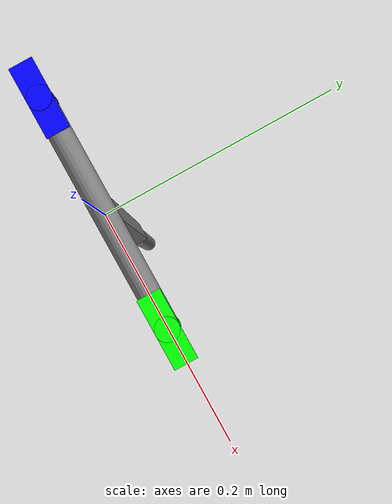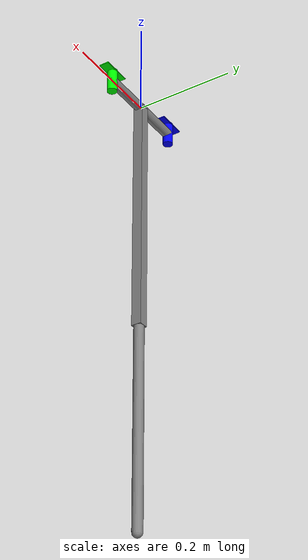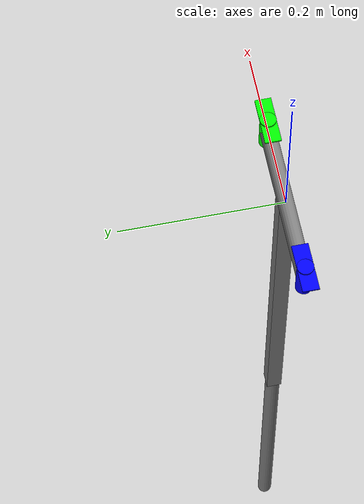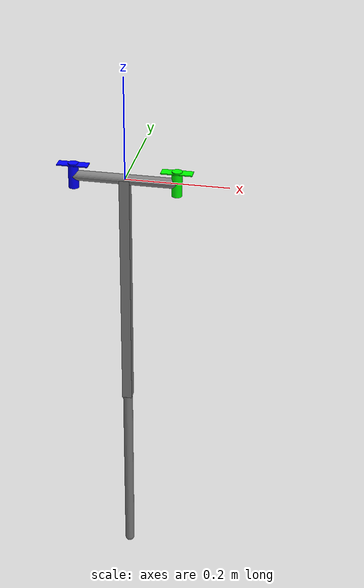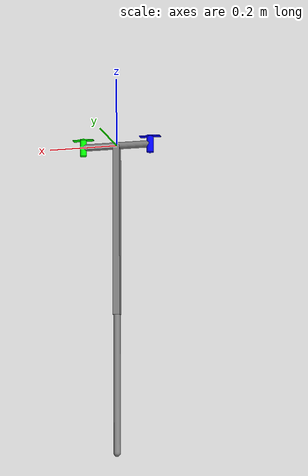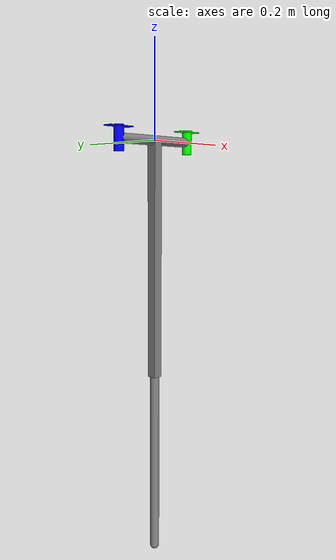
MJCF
<mujoco>
    <compiler angle = "degree"/>
    <option timestep = "0.001"/>
    <option>
        <flag gravity = "enable"/>

    </option>
    <worldbody>
        <body name = "propeller_base" pos = "0 0 0" gravcomp = "3">
            <joint type = "free" name = "free_joint"/>
            <geom type = "capsule" size = ".01 .1" axisangle = "0 1 0 90" mass = "1"/>
            <body name = "propeller_1" pos = ".1 0 0" >
                <geom name = "propeller_1_stick" type = "cylinder" size = ".01 .025" rgba = "0 1 0 1" mass = "0"/>
                <site name = "propeller_1_fan" type = "box" size = ".03 .01 .001" pos = "0 0 .022" rgba = "0 1 0 1" />
            </body>
            <body name = "propeller_2" pos = "-.1 0 0" >
                <geom name = "propeller_2_stick" type = "cylinder" size = ".01 .025" rgba = "0 0 1 1" mass = "0"/>
                <site name = "propeller_2_fan" type = "box" size = ".03 .01 .001" pos = "0 0 .022" rgba = "0 0 1 1" />
            </body>
            <body name = "leg">
                <joint type = "hinge" axis = "0 1 0" name = "prop_base_joint" pos = "0 0 0"/>

                <geom type = "box" fromto = "0 0 0 0 0 -.5" name = "leg" size = ".01 .01" mass = "1"/>
                <body name = "leg_2" pos = "0 0 -.5">
                    <joint type = "hinge" name = "knee" axis = "0 1 0"/>
                    <geom name = "leg_2_stick" type = "capsule" fromto = "0 0 0 0 0 -.4" size = ".01" mass = "1"/>
                    <site name = "foot" pos = "0 0 -.4"/>

                </body>

            </body>
        </body>

    </worldbody>
</mujoco>
